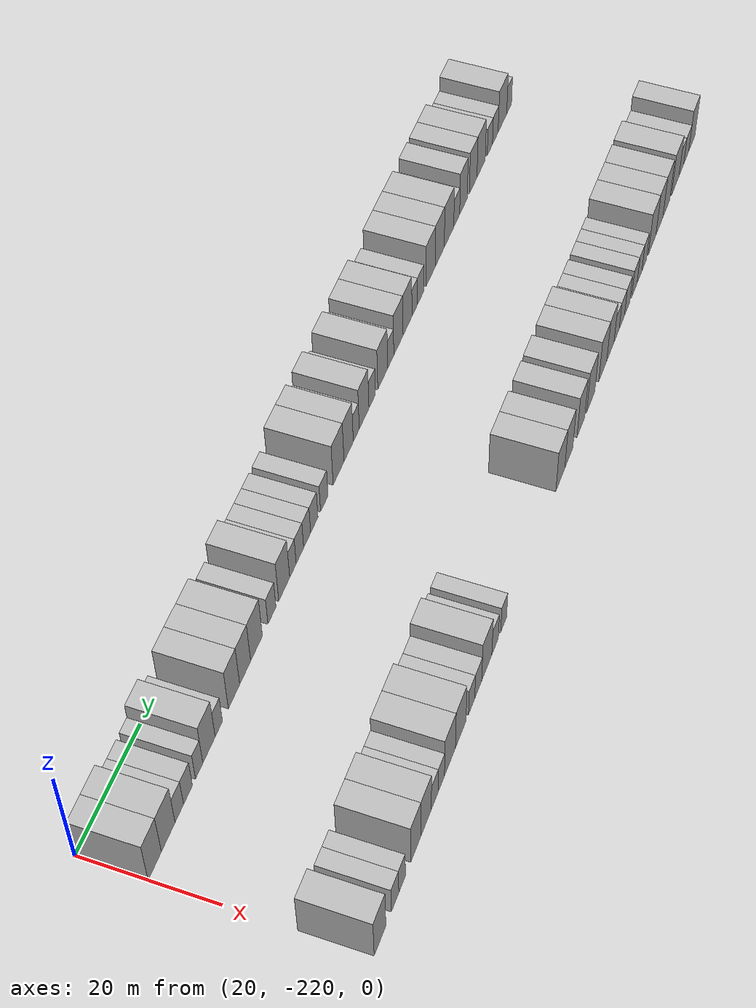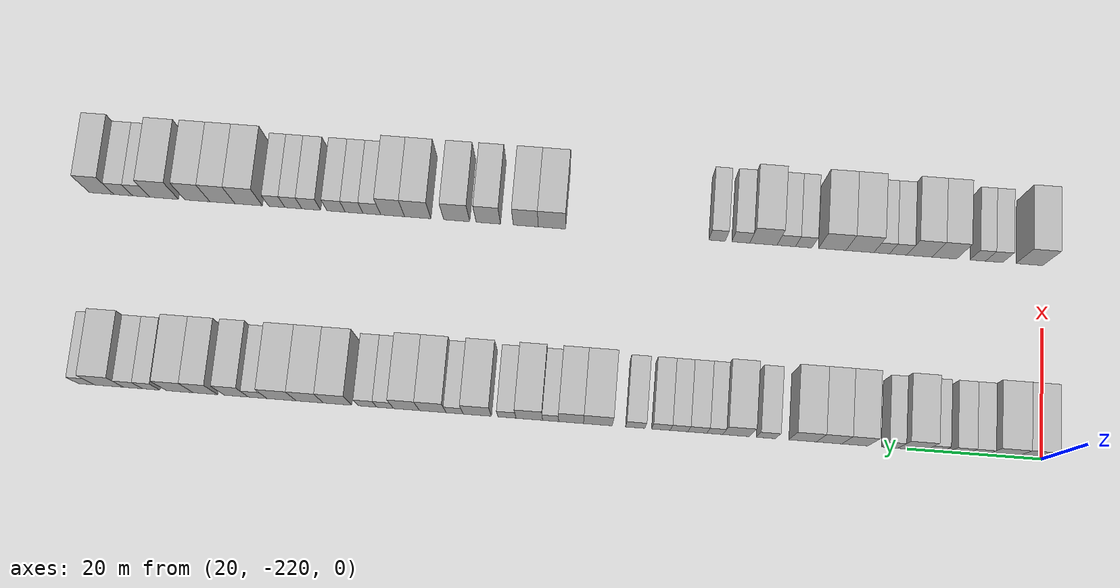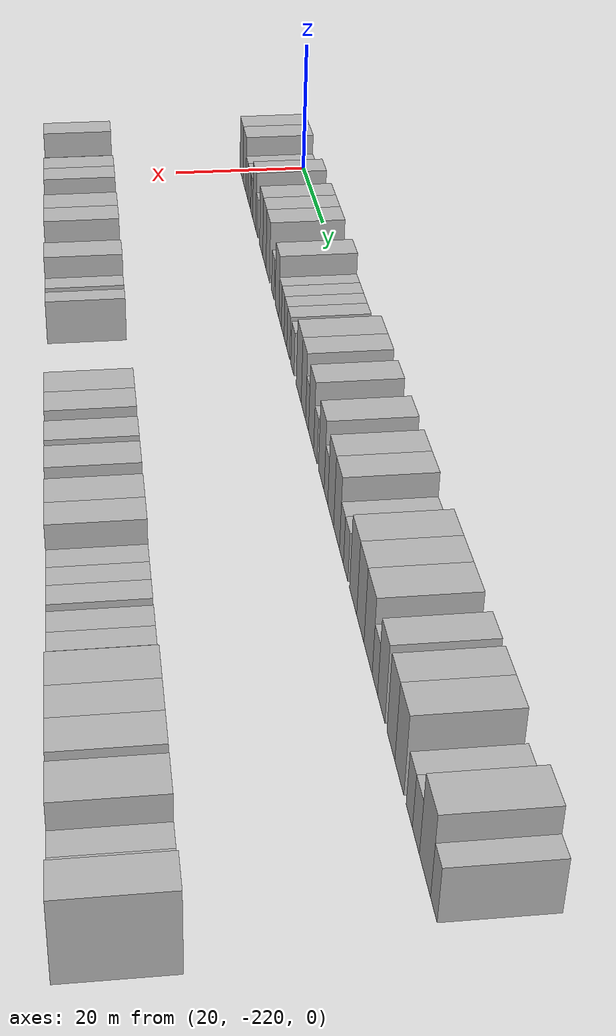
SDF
<sdf version="1.6">
 <world name="default">
  <model name="building_1">
   <static>1</static>
   <pose>25.0000 -217.9361 0 0.000000 0.000000 0.000000</pose>
   <link name="link">
    <pose>0 0 4.50 0 0 0</pose>
    <collision name="collision"><geometry><box><size>10.0000 4.1279 9.0000</size></box></geometry></collision>
    <visual name="visual">
     <cast_shadows>0</cast_shadows>
     <geometry><box><size>10.0000 4.1279 9.0000</size></box></geometry>
     <material>
      <script>
       <uri>model://HANNAS_wall/materials/scripts</uri>
       <uri>model://HANNAS_wall/materials/textures</uri>
       <name>vrc/HANNAS_wall</name>
      </script>
     </material>
    </visual>
   </link>
  </model>
  <model name="building_2">
   <static>1</static>
   <pose>25.0000 -213.7134 0 0.000000 0.000000 0.000000</pose>
   <link name="link">
    <pose>0 0 4.50 0 0 0</pose>
    <collision name="collision"><geometry><box><size>10.0000 4.3174 9.0000</size></box></geometry></collision>
    <visual name="visual">
     <cast_shadows>0</cast_shadows>
     <geometry><box><size>10.0000 4.3174 9.0000</size></box></geometry>
     <material>
      <script>
       <uri>model://HANNAS_wall/materials/scripts</uri>
       <uri>model://HANNAS_wall/materials/textures</uri>
       <name>vrc/HANNAS_wall</name>
      </script>
     </material>
    </visual>
   </link>
  </model>
  <model name="building_3">
   <static>1</static>
   <pose>25.0000 -210.1989 0 0.000000 0.000000 0.000000</pose>
   <link name="link">
    <pose>0 0 3.00 0 0 0</pose>
    <collision name="collision"><geometry><box><size>10.0000 2.7117 6.0000</size></box></geometry></collision>
    <visual name="visual">
     <cast_shadows>0</cast_shadows>
     <geometry><box><size>10.0000 2.7117 6.0000</size></box></geometry>
     <material>
      <script>
       <uri>model://HANNAS_wall/materials/scripts</uri>
       <uri>model://HANNAS_wall/materials/textures</uri>
       <name>vrc/HANNAS_wall</name>
      </script>
     </material>
    </visual>
   </link>
  </model>
  <model name="building_4">
   <static>1</static>
   <pose>25.0000 -207.4145 0 0.000000 0.000000 0.000000</pose>
   <link name="link">
    <pose>0 0 3.00 0 0 0</pose>
    <collision name="collision"><geometry><box><size>10.0000 2.8571 6.0000</size></box></geometry></collision>
    <visual name="visual">
     <cast_shadows>0</cast_shadows>
     <geometry><box><size>10.0000 2.8571 6.0000</size></box></geometry>
     <material>
      <script>
       <uri>model://HANNAS_wall/materials/scripts</uri>
       <uri>model://HANNAS_wall/materials/textures</uri>
       <name>vrc/HANNAS_wall</name>
      </script>
     </material>
    </visual>
   </link>
  </model>
  <model name="building_5">
   <static>1</static>
   <pose>25.0000 -203.7830 0 0.000000 0.000000 0.000000</pose>
   <link name="link">
    <pose>0 0 3.00 0 0 0</pose>
    <collision name="collision"><geometry><box><size>10.0000 2.4057 6.0000</size></box></geometry></collision>
    <visual name="visual">
     <cast_shadows>0</cast_shadows>
     <geometry><box><size>10.0000 2.4057 6.0000</size></box></geometry>
     <material>
      <script>
       <uri>model://HANNAS_wall/materials/scripts</uri>
       <uri>model://HANNAS_wall/materials/textures</uri>
       <name>vrc/HANNAS_wall</name>
      </script>
     </material>
    </visual>
   </link>
  </model>
  <model name="building_6">
   <static>1</static>
   <pose>25.0000 -200.5248 0 0.000000 0.000000 0.000000</pose>
   <link name="link">
    <pose>0 0 4.50 0 0 0</pose>
    <collision name="collision"><geometry><box><size>10.0000 4.1108 9.0000</size></box></geometry></collision>
    <visual name="visual">
     <cast_shadows>0</cast_shadows>
     <geometry><box><size>10.0000 4.1108 9.0000</size></box></geometry>
     <material>
      <script>
       <uri>model://HANNAS_wall/materials/scripts</uri>
       <uri>model://HANNAS_wall/materials/textures</uri>
       <name>vrc/HANNAS_wall</name>
      </script>
     </material>
    </visual>
   </link>
  </model>
  <model name="building_7">
   <static>1</static>
   <pose>25.0000 -197.2412 0 0.000000 0.000000 0.000000</pose>
   <link name="link">
    <pose>0 0 3.00 0 0 0</pose>
    <collision name="collision"><geometry><box><size>10.0000 2.4563 6.0000</size></box></geometry></collision>
    <visual name="visual">
     <cast_shadows>0</cast_shadows>
     <geometry><box><size>10.0000 2.4563 6.0000</size></box></geometry>
     <material>
      <script>
       <uri>model://HANNAS_wall/materials/scripts</uri>
       <uri>model://HANNAS_wall/materials/textures</uri>
       <name>vrc/HANNAS_wall</name>
      </script>
     </material>
    </visual>
   </link>
  </model>
  <model name="building_8">
   <static>1</static>
   <pose>25.0000 -192.0605 0 0.000000 0.000000 0.000000</pose>
   <link name="link">
    <pose>0 0 4.50 0 0 0</pose>
    <collision name="collision"><geometry><box><size>10.0000 3.9051 9.0000</size></box></geometry></collision>
    <visual name="visual">
     <cast_shadows>0</cast_shadows>
     <geometry><box><size>10.0000 3.9051 9.0000</size></box></geometry>
     <material>
      <script>
       <uri>model://HANNAS_wall/materials/scripts</uri>
       <uri>model://HANNAS_wall/materials/textures</uri>
       <name>vrc/HANNAS_wall</name>
      </script>
     </material>
    </visual>
   </link>
  </model>
  <model name="building_9">
   <static>1</static>
   <pose>25.0000 -188.2016 0 0.000000 0.000000 0.000000</pose>
   <link name="link">
    <pose>0 0 4.50 0 0 0</pose>
    <collision name="collision"><geometry><box><size>10.0000 3.8128 9.0000</size></box></geometry></collision>
    <visual name="visual">
     <cast_shadows>0</cast_shadows>
     <geometry><box><size>10.0000 3.8128 9.0000</size></box></geometry>
     <material>
      <script>
       <uri>model://HANNAS_wall/materials/scripts</uri>
       <uri>model://HANNAS_wall/materials/textures</uri>
       <name>vrc/HANNAS_wall</name>
      </script>
     </material>
    </visual>
   </link>
  </model>
  <model name="building_10">
   <static>1</static>
   <pose>25.0000 -184.2133 0 0.000000 0.000000 0.000000</pose>
   <link name="link">
    <pose>0 0 4.50 0 0 0</pose>
    <collision name="collision"><geometry><box><size>10.0000 4.1638 9.0000</size></box></geometry></collision>
    <visual name="visual">
     <cast_shadows>0</cast_shadows>
     <geometry><box><size>10.0000 4.1638 9.0000</size></box></geometry>
     <material>
      <script>
       <uri>model://HANNAS_wall/materials/scripts</uri>
       <uri>model://HANNAS_wall/materials/textures</uri>
       <name>vrc/HANNAS_wall</name>
      </script>
     </material>
    </visual>
   </link>
  </model>
  <model name="building_11">
   <static>1</static>
   <pose>25.0000 -178.6746 0 0.000000 0.000000 0.000000</pose>
   <link name="link">
    <pose>0 0 3.00 0 0 0</pose>
    <collision name="collision"><geometry><box><size>10.0000 2.9137 6.0000</size></box></geometry></collision>
    <visual name="visual">
     <cast_shadows>0</cast_shadows>
     <geometry><box><size>10.0000 2.9137 6.0000</size></box></geometry>
     <material>
      <script>
       <uri>model://HANNAS_wall/materials/scripts</uri>
       <uri>model://HANNAS_wall/materials/textures</uri>
       <name>vrc/HANNAS_wall</name>
      </script>
     </material>
    </visual>
   </link>
  </model>
  <model name="building_12">
   <static>1</static>
   <pose>25.0000 -174.1912 0 0.000000 0.000000 0.000000</pose>
   <link name="link">
    <pose>0 0 4.50 0 0 0</pose>
    <collision name="collision"><geometry><box><size>10.0000 4.0531 9.0000</size></box></geometry></collision>
    <visual name="visual">
     <cast_shadows>0</cast_shadows>
     <geometry><box><size>10.0000 4.0531 9.0000</size></box></geometry>
     <material>
      <script>
       <uri>model://HANNAS_wall/materials/scripts</uri>
       <uri>model://HANNAS_wall/materials/textures</uri>
       <name>vrc/HANNAS_wall</name>
      </script>
     </material>
    </visual>
   </link>
  </model>
  <model name="building_13">
   <static>1</static>
   <pose>25.0000 -170.9646 0 0.000000 0.000000 0.000000</pose>
   <link name="link">
    <pose>0 0 3.00 0 0 0</pose>
    <collision name="collision"><geometry><box><size>10.0000 2.4002 6.0000</size></box></geometry></collision>
    <visual name="visual">
     <cast_shadows>0</cast_shadows>
     <geometry><box><size>10.0000 2.4002 6.0000</size></box></geometry>
     <material>
      <script>
       <uri>model://HANNAS_wall/materials/scripts</uri>
       <uri>model://HANNAS_wall/materials/textures</uri>
       <name>vrc/HANNAS_wall</name>
      </script>
     </material>
    </visual>
   </link>
  </model>
  <model name="building_14">
   <static>1</static>
   <pose>25.0000 -168.3456 0 0.000000 0.000000 0.000000</pose>
   <link name="link">
    <pose>0 0 3.00 0 0 0</pose>
    <collision name="collision"><geometry><box><size>10.0000 2.8377 6.0000</size></box></geometry></collision>
    <visual name="visual">
     <cast_shadows>0</cast_shadows>
     <geometry><box><size>10.0000 2.8377 6.0000</size></box></geometry>
     <material>
      <script>
       <uri>model://HANNAS_wall/materials/scripts</uri>
       <uri>model://HANNAS_wall/materials/textures</uri>
       <name>vrc/HANNAS_wall</name>
      </script>
     </material>
    </visual>
   </link>
  </model>
  <model name="building_15">
   <static>1</static>
   <pose>25.0000 -165.5896 0 0.000000 0.000000 0.000000</pose>
   <link name="link">
    <pose>0 0 3.00 0 0 0</pose>
    <collision name="collision"><geometry><box><size>10.0000 2.6744 6.0000</size></box></geometry></collision>
    <visual name="visual">
     <cast_shadows>0</cast_shadows>
     <geometry><box><size>10.0000 2.6744 6.0000</size></box></geometry>
     <material>
      <script>
       <uri>model://HANNAS_wall/materials/scripts</uri>
       <uri>model://HANNAS_wall/materials/textures</uri>
       <name>vrc/HANNAS_wall</name>
      </script>
     </material>
    </visual>
   </link>
  </model>
  <model name="building_16">
   <static>1</static>
   <pose>25.0000 -162.8514 0 0.000000 0.000000 0.000000</pose>
   <link name="link">
    <pose>0 0 3.00 0 0 0</pose>
    <collision name="collision"><geometry><box><size>10.0000 2.8020 6.0000</size></box></geometry></collision>
    <visual name="visual">
     <cast_shadows>0</cast_shadows>
     <geometry><box><size>10.0000 2.8020 6.0000</size></box></geometry>
     <material>
      <script>
       <uri>model://HANNAS_wall/materials/scripts</uri>
       <uri>model://HANNAS_wall/materials/textures</uri>
       <name>vrc/HANNAS_wall</name>
      </script>
     </material>
    </visual>
   </link>
  </model>
  <model name="building_17">
   <static>1</static>
   <pose>25.0000 -158.9862 0 0.000000 0.000000 0.000000</pose>
   <link name="link">
    <pose>0 0 3.00 0 0 0</pose>
    <collision name="collision"><geometry><box><size>10.0000 2.9284 6.0000</size></box></geometry></collision>
    <visual name="visual">
     <cast_shadows>0</cast_shadows>
     <geometry><box><size>10.0000 2.9284 6.0000</size></box></geometry>
     <material>
      <script>
       <uri>model://HANNAS_wall/materials/scripts</uri>
       <uri>model://HANNAS_wall/materials/textures</uri>
       <name>vrc/HANNAS_wall</name>
      </script>
     </material>
    </visual>
   </link>
  </model>
  <model name="building_18">
   <static>1</static>
   <pose>25.0000 -153.3466 0 0.000000 0.000000 0.000000</pose>
   <link name="link">
    <pose>0 0 4.50 0 0 0</pose>
    <collision name="collision"><geometry><box><size>10.0000 4.3508 9.0000</size></box></geometry></collision>
    <visual name="visual">
     <cast_shadows>0</cast_shadows>
     <geometry><box><size>10.0000 4.3508 9.0000</size></box></geometry>
     <material>
      <script>
       <uri>model://HANNAS_wall/materials/scripts</uri>
       <uri>model://HANNAS_wall/materials/textures</uri>
       <name>vrc/HANNAS_wall</name>
      </script>
     </material>
    </visual>
   </link>
  </model>
  <model name="building_19">
   <static>1</static>
   <pose>25.0000 -149.2983 0 0.000000 0.000000 0.000000</pose>
   <link name="link">
    <pose>0 0 4.50 0 0 0</pose>
    <collision name="collision"><geometry><box><size>10.0000 3.7458 9.0000</size></box></geometry></collision>
    <visual name="visual">
     <cast_shadows>0</cast_shadows>
     <geometry><box><size>10.0000 3.7458 9.0000</size></box></geometry>
     <material>
      <script>
       <uri>model://HANNAS_wall/materials/scripts</uri>
       <uri>model://HANNAS_wall/materials/textures</uri>
       <name>vrc/HANNAS_wall</name>
      </script>
     </material>
    </visual>
   </link>
  </model>
  <model name="building_20">
   <static>1</static>
   <pose>25.0000 -146.2084 0 0.000000 0.000000 0.000000</pose>
   <link name="link">
    <pose>0 0 3.00 0 0 0</pose>
    <collision name="collision"><geometry><box><size>10.0000 2.4340 6.0000</size></box></geometry></collision>
    <visual name="visual">
     <cast_shadows>0</cast_shadows>
     <geometry><box><size>10.0000 2.4340 6.0000</size></box></geometry>
     <material>
      <script>
       <uri>model://HANNAS_wall/materials/scripts</uri>
       <uri>model://HANNAS_wall/materials/textures</uri>
       <name>vrc/HANNAS_wall</name>
      </script>
     </material>
    </visual>
   </link>
  </model>
  <model name="building_21">
   <static>1</static>
   <pose>25.0000 -142.9837 0 0.000000 0.000000 0.000000</pose>
   <link name="link">
    <pose>0 0 4.50 0 0 0</pose>
    <collision name="collision"><geometry><box><size>10.0000 4.0155 9.0000</size></box></geometry></collision>
    <visual name="visual">
     <cast_shadows>0</cast_shadows>
     <geometry><box><size>10.0000 4.0155 9.0000</size></box></geometry>
     <material>
      <script>
       <uri>model://HANNAS_wall/materials/scripts</uri>
       <uri>model://HANNAS_wall/materials/textures</uri>
       <name>vrc/HANNAS_wall</name>
      </script>
     </material>
    </visual>
   </link>
  </model>
  <model name="building_22">
   <static>1</static>
   <pose>25.0000 -139.6213 0 0.000000 0.000000 0.000000</pose>
   <link name="link">
    <pose>0 0 3.00 0 0 0</pose>
    <collision name="collision"><geometry><box><size>10.0000 2.7093 6.0000</size></box></geometry></collision>
    <visual name="visual">
     <cast_shadows>0</cast_shadows>
     <geometry><box><size>10.0000 2.7093 6.0000</size></box></geometry>
     <material>
      <script>
       <uri>model://HANNAS_wall/materials/scripts</uri>
       <uri>model://HANNAS_wall/materials/textures</uri>
       <name>vrc/HANNAS_wall</name>
      </script>
     </material>
    </visual>
   </link>
  </model>
  <model name="building_23">
   <static>1</static>
   <pose>25.0000 -135.1451 0 0.000000 0.000000 0.000000</pose>
   <link name="link">
    <pose>0 0 4.50 0 0 0</pose>
    <collision name="collision"><geometry><box><size>10.0000 4.2429 9.0000</size></box></geometry></collision>
    <visual name="visual">
     <cast_shadows>0</cast_shadows>
     <geometry><box><size>10.0000 4.2429 9.0000</size></box></geometry>
     <material>
      <script>
       <uri>model://HANNAS_wall/materials/scripts</uri>
       <uri>model://HANNAS_wall/materials/textures</uri>
       <name>vrc/HANNAS_wall</name>
      </script>
     </material>
    </visual>
   </link>
  </model>
  <model name="building_24">
   <static>1</static>
   <pose>25.0000 -131.7192 0 0.000000 0.000000 0.000000</pose>
   <link name="link">
    <pose>0 0 3.00 0 0 0</pose>
    <collision name="collision"><geometry><box><size>10.0000 2.6089 6.0000</size></box></geometry></collision>
    <visual name="visual">
     <cast_shadows>0</cast_shadows>
     <geometry><box><size>10.0000 2.6089 6.0000</size></box></geometry>
     <material>
      <script>
       <uri>model://HANNAS_wall/materials/scripts</uri>
       <uri>model://HANNAS_wall/materials/textures</uri>
       <name>vrc/HANNAS_wall</name>
      </script>
     </material>
    </visual>
   </link>
  </model>
  <model name="building_25">
   <static>1</static>
   <pose>25.0000 -128.3897 0 0.000000 0.000000 0.000000</pose>
   <link name="link">
    <pose>0 0 4.50 0 0 0</pose>
    <collision name="collision"><geometry><box><size>10.0000 4.0501 9.0000</size></box></geometry></collision>
    <visual name="visual">
     <cast_shadows>0</cast_shadows>
     <geometry><box><size>10.0000 4.0501 9.0000</size></box></geometry>
     <material>
      <script>
       <uri>model://HANNAS_wall/materials/scripts</uri>
       <uri>model://HANNAS_wall/materials/textures</uri>
       <name>vrc/HANNAS_wall</name>
      </script>
     </material>
    </visual>
   </link>
  </model>
  <model name="building_26">
   <static>1</static>
   <pose>25.0000 -124.4075 0 0.000000 0.000000 0.000000</pose>
   <link name="link">
    <pose>0 0 4.50 0 0 0</pose>
    <collision name="collision"><geometry><box><size>10.0000 3.9143 9.0000</size></box></geometry></collision>
    <visual name="visual">
     <cast_shadows>0</cast_shadows>
     <geometry><box><size>10.0000 3.9143 9.0000</size></box></geometry>
     <material>
      <script>
       <uri>model://HANNAS_wall/materials/scripts</uri>
       <uri>model://HANNAS_wall/materials/textures</uri>
       <name>vrc/HANNAS_wall</name>
      </script>
     </material>
    </visual>
   </link>
  </model>
  <model name="building_27">
   <static>1</static>
   <pose>25.0000 -121.1815 0 0.000000 0.000000 0.000000</pose>
   <link name="link">
    <pose>0 0 3.00 0 0 0</pose>
    <collision name="collision"><geometry><box><size>10.0000 2.5376 6.0000</size></box></geometry></collision>
    <visual name="visual">
     <cast_shadows>0</cast_shadows>
     <geometry><box><size>10.0000 2.5376 6.0000</size></box></geometry>
     <material>
      <script>
       <uri>model://HANNAS_wall/materials/scripts</uri>
       <uri>model://HANNAS_wall/materials/textures</uri>
       <name>vrc/HANNAS_wall</name>
      </script>
     </material>
    </visual>
   </link>
  </model>
  <model name="building_28">
   <static>1</static>
   <pose>25.0000 -118.4979 0 0.000000 0.000000 0.000000</pose>
   <link name="link">
    <pose>0 0 3.00 0 0 0</pose>
    <collision name="collision"><geometry><box><size>10.0000 2.8295 6.0000</size></box></geometry></collision>
    <visual name="visual">
     <cast_shadows>0</cast_shadows>
     <geometry><box><size>10.0000 2.8295 6.0000</size></box></geometry>
     <material>
      <script>
       <uri>model://HANNAS_wall/materials/scripts</uri>
       <uri>model://HANNAS_wall/materials/textures</uri>
       <name>vrc/HANNAS_wall</name>
      </script>
     </material>
    </visual>
   </link>
  </model>
  <model name="building_29">
   <static>1</static>
   <pose>25.0000 -113.9356 0 0.000000 0.000000 0.000000</pose>
   <link name="link">
    <pose>0 0 4.50 0 0 0</pose>
    <collision name="collision"><geometry><box><size>10.0000 4.2951 9.0000</size></box></geometry></collision>
    <visual name="visual">
     <cast_shadows>0</cast_shadows>
     <geometry><box><size>10.0000 4.2951 9.0000</size></box></geometry>
     <material>
      <script>
       <uri>model://HANNAS_wall/materials/scripts</uri>
       <uri>model://HANNAS_wall/materials/textures</uri>
       <name>vrc/HANNAS_wall</name>
      </script>
     </material>
    </visual>
   </link>
  </model>
  <model name="building_30">
   <static>1</static>
   <pose>25.0000 -109.7201 0 0.000000 0.000000 0.000000</pose>
   <link name="link">
    <pose>0 0 4.50 0 0 0</pose>
    <collision name="collision"><geometry><box><size>10.0000 4.1360 9.0000</size></box></geometry></collision>
    <visual name="visual">
     <cast_shadows>0</cast_shadows>
     <geometry><box><size>10.0000 4.1360 9.0000</size></box></geometry>
     <material>
      <script>
       <uri>model://HANNAS_wall/materials/scripts</uri>
       <uri>model://HANNAS_wall/materials/textures</uri>
       <name>vrc/HANNAS_wall</name>
      </script>
     </material>
    </visual>
   </link>
  </model>
  <model name="building_31">
   <static>1</static>
   <pose>25.0000 -105.4239 0 0.000000 0.000000 0.000000</pose>
   <link name="link">
    <pose>0 0 4.50 0 0 0</pose>
    <collision name="collision"><geometry><box><size>10.0000 4.4564 9.0000</size></box></geometry></collision>
    <visual name="visual">
     <cast_shadows>0</cast_shadows>
     <geometry><box><size>10.0000 4.4564 9.0000</size></box></geometry>
     <material>
      <script>
       <uri>model://HANNAS_wall/materials/scripts</uri>
       <uri>model://HANNAS_wall/materials/textures</uri>
       <name>vrc/HANNAS_wall</name>
      </script>
     </material>
    </visual>
   </link>
  </model>
  <model name="building_32">
   <static>1</static>
   <pose>25.0000 -101.7912 0 0.000000 0.000000 0.000000</pose>
   <link name="link">
    <pose>0 0 3.00 0 0 0</pose>
    <collision name="collision"><geometry><box><size>10.0000 2.8089 6.0000</size></box></geometry></collision>
    <visual name="visual">
     <cast_shadows>0</cast_shadows>
     <geometry><box><size>10.0000 2.8089 6.0000</size></box></geometry>
     <material>
      <script>
       <uri>model://HANNAS_wall/materials/scripts</uri>
       <uri>model://HANNAS_wall/materials/textures</uri>
       <name>vrc/HANNAS_wall</name>
      </script>
     </material>
    </visual>
   </link>
  </model>
  <model name="building_33">
   <static>1</static>
   <pose>25.0000 -98.5411 0 0.000000 0.000000 0.000000</pose>
   <link name="link">
    <pose>0 0 4.50 0 0 0</pose>
    <collision name="collision"><geometry><box><size>10.0000 3.6913 9.0000</size></box></geometry></collision>
    <visual name="visual">
     <cast_shadows>0</cast_shadows>
     <geometry><box><size>10.0000 3.6913 9.0000</size></box></geometry>
     <material>
      <script>
       <uri>model://HANNAS_wall/materials/scripts</uri>
       <uri>model://HANNAS_wall/materials/textures</uri>
       <name>vrc/HANNAS_wall</name>
      </script>
     </material>
    </visual>
   </link>
  </model>
  <model name="building_34">
   <static>1</static>
   <pose>25.0000 -93.8337 0 0.000000 0.000000 0.000000</pose>
   <link name="link">
    <pose>0 0 4.50 0 0 0</pose>
    <collision name="collision"><geometry><box><size>10.0000 3.7235 9.0000</size></box></geometry></collision>
    <visual name="visual">
     <cast_shadows>0</cast_shadows>
     <geometry><box><size>10.0000 3.7235 9.0000</size></box></geometry>
     <material>
      <script>
       <uri>model://HANNAS_wall/materials/scripts</uri>
       <uri>model://HANNAS_wall/materials/textures</uri>
       <name>vrc/HANNAS_wall</name>
      </script>
     </material>
    </visual>
   </link>
  </model>
  <model name="building_35">
   <static>1</static>
   <pose>25.0000 -89.9262 0 0.000000 0.000000 0.000000</pose>
   <link name="link">
    <pose>0 0 4.50 0 0 0</pose>
    <collision name="collision"><geometry><box><size>10.0000 4.0915 9.0000</size></box></geometry></collision>
    <visual name="visual">
     <cast_shadows>0</cast_shadows>
     <geometry><box><size>10.0000 4.0915 9.0000</size></box></geometry>
     <material>
      <script>
       <uri>model://HANNAS_wall/materials/scripts</uri>
       <uri>model://HANNAS_wall/materials/textures</uri>
       <name>vrc/HANNAS_wall</name>
      </script>
     </material>
    </visual>
   </link>
  </model>
  <model name="building_36">
   <static>1</static>
   <pose>25.0000 -85.5533 0 0.000000 0.000000 0.000000</pose>
   <link name="link">
    <pose>0 0 3.00 0 0 0</pose>
    <collision name="collision"><geometry><box><size>10.0000 2.6542 6.0000</size></box></geometry></collision>
    <visual name="visual">
     <cast_shadows>0</cast_shadows>
     <geometry><box><size>10.0000 2.6542 6.0000</size></box></geometry>
     <material>
      <script>
       <uri>model://HANNAS_wall/materials/scripts</uri>
       <uri>model://HANNAS_wall/materials/textures</uri>
       <name>vrc/HANNAS_wall</name>
      </script>
     </material>
    </visual>
   </link>
  </model>
  <model name="building_37">
   <static>1</static>
   <pose>25.0000 -82.7916 0 0.000000 0.000000 0.000000</pose>
   <link name="link">
    <pose>0 0 3.00 0 0 0</pose>
    <collision name="collision"><geometry><box><size>10.0000 2.8693 6.0000</size></box></geometry></collision>
    <visual name="visual">
     <cast_shadows>0</cast_shadows>
     <geometry><box><size>10.0000 2.8693 6.0000</size></box></geometry>
     <material>
      <script>
       <uri>model://HANNAS_wall/materials/scripts</uri>
       <uri>model://HANNAS_wall/materials/textures</uri>
       <name>vrc/HANNAS_wall</name>
      </script>
     </material>
    </visual>
   </link>
  </model>
  <model name="building_38">
   <static>1</static>
   <pose>25.0000 -79.1529 0 0.000000 0.000000 0.000000</pose>
   <link name="link">
    <pose>0 0 4.50 0 0 0</pose>
    <collision name="collision"><geometry><box><size>10.0000 4.4080 9.0000</size></box></geometry></collision>
    <visual name="visual">
     <cast_shadows>0</cast_shadows>
     <geometry><box><size>10.0000 4.4080 9.0000</size></box></geometry>
     <material>
      <script>
       <uri>model://HANNAS_wall/materials/scripts</uri>
       <uri>model://HANNAS_wall/materials/textures</uri>
       <name>vrc/HANNAS_wall</name>
      </script>
     </material>
    </visual>
   </link>
  </model>
  <model name="building_39">
   <static>1</static>
   <pose>25.0000 -75.7002 0 0.000000 0.000000 0.000000</pose>
   <link name="link">
    <pose>0 0 3.00 0 0 0</pose>
    <collision name="collision"><geometry><box><size>10.0000 2.4975 6.0000</size></box></geometry></collision>
    <visual name="visual">
     <cast_shadows>0</cast_shadows>
     <geometry><box><size>10.0000 2.4975 6.0000</size></box></geometry>
     <material>
      <script>
       <uri>model://HANNAS_wall/materials/scripts</uri>
       <uri>model://HANNAS_wall/materials/textures</uri>
       <name>vrc/HANNAS_wall</name>
      </script>
     </material>
    </visual>
   </link>
  </model>
  <model name="building_107">
   <static>1</static>
   <pose>55.0000 -217.9245 0 0.000000 0.000000 0.000000</pose>
   <link name="link">
    <pose>0 0 4.50 0 0 0</pose>
    <collision name="collision"><geometry><box><size>10.0000 4.1509 9.0000</size></box></geometry></collision>
    <visual name="visual">
     <cast_shadows>0</cast_shadows>
     <geometry><box><size>10.0000 4.1509 9.0000</size></box></geometry>
     <material>
      <script>
       <uri>model://HANNAS_wall/materials/scripts</uri>
       <uri>model://HANNAS_wall/materials/textures</uri>
       <name>vrc/HANNAS_wall</name>
      </script>
     </material>
    </visual>
   </link>
  </model>
  <model name="building_108">
   <static>1</static>
   <pose>55.0000 -212.5198 0 0.000000 0.000000 0.000000</pose>
   <link name="link">
    <pose>0 0 3.00 0 0 0</pose>
    <collision name="collision"><geometry><box><size>10.0000 2.6585 6.0000</size></box></geometry></collision>
    <visual name="visual">
     <cast_shadows>0</cast_shadows>
     <geometry><box><size>10.0000 2.6585 6.0000</size></box></geometry>
     <material>
      <script>
       <uri>model://HANNAS_wall/materials/scripts</uri>
       <uri>model://HANNAS_wall/materials/textures</uri>
       <name>vrc/HANNAS_wall</name>
      </script>
     </material>
    </visual>
   </link>
  </model>
  <model name="building_109">
   <static>1</static>
   <pose>55.0000 -209.9750 0 0.000000 0.000000 0.000000</pose>
   <link name="link">
    <pose>0 0 3.00 0 0 0</pose>
    <collision name="collision"><geometry><box><size>10.0000 2.4311 6.0000</size></box></geometry></collision>
    <visual name="visual">
     <cast_shadows>0</cast_shadows>
     <geometry><box><size>10.0000 2.4311 6.0000</size></box></geometry>
     <material>
      <script>
       <uri>model://HANNAS_wall/materials/scripts</uri>
       <uri>model://HANNAS_wall/materials/textures</uri>
       <name>vrc/HANNAS_wall</name>
      </script>
     </material>
    </visual>
   </link>
  </model>
  <model name="building_110">
   <static>1</static>
   <pose>55.0000 -204.8515 0 0.000000 0.000000 0.000000</pose>
   <link name="link">
    <pose>0 0 4.50 0 0 0</pose>
    <collision name="collision"><geometry><box><size>10.0000 3.8159 9.0000</size></box></geometry></collision>
    <visual name="visual">
     <cast_shadows>0</cast_shadows>
     <geometry><box><size>10.0000 3.8159 9.0000</size></box></geometry>
     <material>
      <script>
       <uri>model://HANNAS_wall/materials/scripts</uri>
       <uri>model://HANNAS_wall/materials/textures</uri>
       <name>vrc/HANNAS_wall</name>
      </script>
     </material>
    </visual>
   </link>
  </model>
  <model name="building_111">
   <static>1</static>
   <pose>55.0000 -200.9838 0 0.000000 0.000000 0.000000</pose>
   <link name="link">
    <pose>0 0 4.50 0 0 0</pose>
    <collision name="collision"><geometry><box><size>10.0000 3.9195 9.0000</size></box></geometry></collision>
    <visual name="visual">
     <cast_shadows>0</cast_shadows>
     <geometry><box><size>10.0000 3.9195 9.0000</size></box></geometry>
     <material>
      <script>
       <uri>model://HANNAS_wall/materials/scripts</uri>
       <uri>model://HANNAS_wall/materials/textures</uri>
       <name>vrc/HANNAS_wall</name>
      </script>
     </material>
    </visual>
   </link>
  </model>
  <model name="building_112">
   <static>1</static>
   <pose>55.0000 -197.6910 0 0.000000 0.000000 0.000000</pose>
   <link name="link">
    <pose>0 0 3.00 0 0 0</pose>
    <collision name="collision"><geometry><box><size>10.0000 2.6661 6.0000</size></box></geometry></collision>
    <visual name="visual">
     <cast_shadows>0</cast_shadows>
     <geometry><box><size>10.0000 2.6661 6.0000</size></box></geometry>
     <material>
      <script>
       <uri>model://HANNAS_wall/materials/scripts</uri>
       <uri>model://HANNAS_wall/materials/textures</uri>
       <name>vrc/HANNAS_wall</name>
      </script>
     </material>
    </visual>
   </link>
  </model>
  <model name="building_113">
   <static>1</static>
   <pose>55.0000 -195.1484 0 0.000000 0.000000 0.000000</pose>
   <link name="link">
    <pose>0 0 3.00 0 0 0</pose>
    <collision name="collision"><geometry><box><size>10.0000 2.4190 6.0000</size></box></geometry></collision>
    <visual name="visual">
     <cast_shadows>0</cast_shadows>
     <geometry><box><size>10.0000 2.4190 6.0000</size></box></geometry>
     <material>
      <script>
       <uri>model://HANNAS_wall/materials/scripts</uri>
       <uri>model://HANNAS_wall/materials/textures</uri>
       <name>vrc/HANNAS_wall</name>
      </script>
     </material>
    </visual>
   </link>
  </model>
  <model name="building_114">
   <static>1</static>
   <pose>55.0000 -191.7737 0 0.000000 0.000000 0.000000</pose>
   <link name="link">
    <pose>0 0 4.50 0 0 0</pose>
    <collision name="collision"><geometry><box><size>10.0000 4.3305 9.0000</size></box></geometry></collision>
    <visual name="visual">
     <cast_shadows>0</cast_shadows>
     <geometry><box><size>10.0000 4.3305 9.0000</size></box></geometry>
     <material>
      <script>
       <uri>model://HANNAS_wall/materials/scripts</uri>
       <uri>model://HANNAS_wall/materials/textures</uri>
       <name>vrc/HANNAS_wall</name>
      </script>
     </material>
    </visual>
   </link>
  </model>
  <model name="building_115">
   <static>1</static>
   <pose>55.0000 -187.4859 0 0.000000 0.000000 0.000000</pose>
   <link name="link">
    <pose>0 0 4.50 0 0 0</pose>
    <collision name="collision"><geometry><box><size>10.0000 4.2450 9.0000</size></box></geometry></collision>
    <visual name="visual">
     <cast_shadows>0</cast_shadows>
     <geometry><box><size>10.0000 4.2450 9.0000</size></box></geometry>
     <material>
      <script>
       <uri>model://HANNAS_wall/materials/scripts</uri>
       <uri>model://HANNAS_wall/materials/textures</uri>
       <name>vrc/HANNAS_wall</name>
      </script>
     </material>
    </visual>
   </link>
  </model>
  <model name="building_116">
   <static>1</static>
   <pose>55.0000 -183.0815 0 0.000000 0.000000 0.000000</pose>
   <link name="link">
    <pose>0 0 3.00 0 0 0</pose>
    <collision name="collision"><geometry><box><size>10.0000 2.5638 6.0000</size></box></geometry></collision>
    <visual name="visual">
     <cast_shadows>0</cast_shadows>
     <geometry><box><size>10.0000 2.5638 6.0000</size></box></geometry>
     <material>
      <script>
       <uri>model://HANNAS_wall/materials/scripts</uri>
       <uri>model://HANNAS_wall/materials/textures</uri>
       <name>vrc/HANNAS_wall</name>
      </script>
     </material>
    </visual>
   </link>
  </model>
  <model name="building_117">
   <static>1</static>
   <pose>55.0000 -180.3723 0 0.000000 0.000000 0.000000</pose>
   <link name="link">
    <pose>0 0 3.00 0 0 0</pose>
    <collision name="collision"><geometry><box><size>10.0000 2.8548 6.0000</size></box></geometry></collision>
    <visual name="visual">
     <cast_shadows>0</cast_shadows>
     <geometry><box><size>10.0000 2.8548 6.0000</size></box></geometry>
     <material>
      <script>
       <uri>model://HANNAS_wall/materials/scripts</uri>
       <uri>model://HANNAS_wall/materials/textures</uri>
       <name>vrc/HANNAS_wall</name>
      </script>
     </material>
    </visual>
   </link>
  </model>
  <model name="building_118">
   <static>1</static>
   <pose>55.0000 -176.8264 0 0.000000 0.000000 0.000000</pose>
   <link name="link">
    <pose>0 0 4.50 0 0 0</pose>
    <collision name="collision"><geometry><box><size>10.0000 4.2369 9.0000</size></box></geometry></collision>
    <visual name="visual">
     <cast_shadows>0</cast_shadows>
     <geometry><box><size>10.0000 4.2369 9.0000</size></box></geometry>
     <material>
      <script>
       <uri>model://HANNAS_wall/materials/scripts</uri>
       <uri>model://HANNAS_wall/materials/textures</uri>
       <name>vrc/HANNAS_wall</name>
      </script>
     </material>
    </visual>
   </link>
  </model>
  <model name="building_119">
   <static>1</static>
   <pose>55.0000 -173.3145 0 0.000000 0.000000 0.000000</pose>
   <link name="link">
    <pose>0 0 3.00 0 0 0</pose>
    <collision name="collision"><geometry><box><size>10.0000 2.7870 6.0000</size></box></geometry></collision>
    <visual name="visual">
     <cast_shadows>0</cast_shadows>
     <geometry><box><size>10.0000 2.7870 6.0000</size></box></geometry>
     <material>
      <script>
       <uri>model://HANNAS_wall/materials/scripts</uri>
       <uri>model://HANNAS_wall/materials/textures</uri>
       <name>vrc/HANNAS_wall</name>
      </script>
     </material>
    </visual>
   </link>
  </model>
  <model name="building_120">
   <static>1</static>
   <pose>55.0000 -169.6356 0 0.000000 0.000000 0.000000</pose>
   <link name="link">
    <pose>0 0 3.00 0 0 0</pose>
    <collision name="collision"><geometry><box><size>10.0000 2.5708 6.0000</size></box></geometry></collision>
    <visual name="visual">
     <cast_shadows>0</cast_shadows>
     <geometry><box><size>10.0000 2.5708 6.0000</size></box></geometry>
     <material>
      <script>
       <uri>model://HANNAS_wall/materials/scripts</uri>
       <uri>model://HANNAS_wall/materials/textures</uri>
       <name>vrc/HANNAS_wall</name>
      </script>
     </material>
    </visual>
   </link>
  </model>
  <model name="building_121">
   <static>1</static>
   <pose>55.0000 -143.9772 0 0.000000 0.000000 0.000000</pose>
   <link name="link">
    <pose>0 0 4.50 0 0 0</pose>
    <collision name="collision"><geometry><box><size>10.0000 4.2487 9.0000</size></box></geometry></collision>
    <visual name="visual">
     <cast_shadows>0</cast_shadows>
     <geometry><box><size>10.0000 4.2487 9.0000</size></box></geometry>
     <material>
      <script>
       <uri>model://HANNAS_wall/materials/scripts</uri>
       <uri>model://HANNAS_wall/materials/textures</uri>
       <name>vrc/HANNAS_wall</name>
      </script>
     </material>
    </visual>
   </link>
  </model>
  <model name="building_122">
   <static>1</static>
   <pose>55.0000 -139.9049 0 0.000000 0.000000 0.000000</pose>
   <link name="link">
    <pose>0 0 4.50 0 0 0</pose>
    <collision name="collision"><geometry><box><size>10.0000 3.8959 9.0000</size></box></geometry></collision>
    <visual name="visual">
     <cast_shadows>0</cast_shadows>
     <geometry><box><size>10.0000 3.8959 9.0000</size></box></geometry>
     <material>
      <script>
       <uri>model://HANNAS_wall/materials/scripts</uri>
       <uri>model://HANNAS_wall/materials/textures</uri>
       <name>vrc/HANNAS_wall</name>
      </script>
     </material>
    </visual>
   </link>
  </model>
  <model name="building_123">
   <static>1</static>
   <pose>55.0000 -134.0569 0 0.000000 0.000000 0.000000</pose>
   <link name="link">
    <pose>0 0 4.50 0 0 0</pose>
    <collision name="collision"><geometry><box><size>10.0000 3.8002 9.0000</size></box></geometry></collision>
    <visual name="visual">
     <cast_shadows>0</cast_shadows>
     <geometry><box><size>10.0000 3.8002 9.0000</size></box></geometry>
     <material>
      <script>
       <uri>model://HANNAS_wall/materials/scripts</uri>
       <uri>model://HANNAS_wall/materials/textures</uri>
       <name>vrc/HANNAS_wall</name>
      </script>
     </material>
    </visual>
   </link>
  </model>
  <model name="building_124">
   <static>1</static>
   <pose>55.0000 -129.1270 0 0.000000 0.000000 0.000000</pose>
   <link name="link">
    <pose>0 0 4.50 0 0 0</pose>
    <collision name="collision"><geometry><box><size>10.0000 4.0596 9.0000</size></box></geometry></collision>
    <visual name="visual">
     <cast_shadows>0</cast_shadows>
     <geometry><box><size>10.0000 4.0596 9.0000</size></box></geometry>
     <material>
      <script>
       <uri>model://HANNAS_wall/materials/scripts</uri>
       <uri>model://HANNAS_wall/materials/textures</uri>
       <name>vrc/HANNAS_wall</name>
      </script>
     </material>
    </visual>
   </link>
  </model>
  <model name="building_125">
   <static>1</static>
   <pose>55.0000 -123.0445 0 0.000000 0.000000 0.000000</pose>
   <link name="link">
    <pose>0 0 4.50 0 0 0</pose>
    <collision name="collision"><geometry><box><size>10.0000 4.1054 9.0000</size></box></geometry></collision>
    <visual name="visual">
     <cast_shadows>0</cast_shadows>
     <geometry><box><size>10.0000 4.1054 9.0000</size></box></geometry>
     <material>
      <script>
       <uri>model://HANNAS_wall/materials/scripts</uri>
       <uri>model://HANNAS_wall/materials/textures</uri>
       <name>vrc/HANNAS_wall</name>
      </script>
     </material>
    </visual>
   </link>
  </model>
  <model name="building_126">
   <static>1</static>
   <pose>55.0000 -119.1241 0 0.000000 0.000000 0.000000</pose>
   <link name="link">
    <pose>0 0 4.50 0 0 0</pose>
    <collision name="collision"><geometry><box><size>10.0000 3.7354 9.0000</size></box></geometry></collision>
    <visual name="visual">
     <cast_shadows>0</cast_shadows>
     <geometry><box><size>10.0000 3.7354 9.0000</size></box></geometry>
     <material>
      <script>
       <uri>model://HANNAS_wall/materials/scripts</uri>
       <uri>model://HANNAS_wall/materials/textures</uri>
       <name>vrc/HANNAS_wall</name>
      </script>
     </material>
    </visual>
   </link>
  </model>
  <model name="building_127">
   <static>1</static>
   <pose>55.0000 -115.8616 0 0.000000 0.000000 0.000000</pose>
   <link name="link">
    <pose>0 0 3.00 0 0 0</pose>
    <collision name="collision"><geometry><box><size>10.0000 2.7895 6.0000</size></box></geometry></collision>
    <visual name="visual">
     <cast_shadows>0</cast_shadows>
     <geometry><box><size>10.0000 2.7895 6.0000</size></box></geometry>
     <material>
      <script>
       <uri>model://HANNAS_wall/materials/scripts</uri>
       <uri>model://HANNAS_wall/materials/textures</uri>
       <name>vrc/HANNAS_wall</name>
      </script>
     </material>
    </visual>
   </link>
  </model>
  <model name="building_128">
   <static>1</static>
   <pose>55.0000 -113.0891 0 0.000000 0.000000 0.000000</pose>
   <link name="link">
    <pose>0 0 3.00 0 0 0</pose>
    <collision name="collision"><geometry><box><size>10.0000 2.7555 6.0000</size></box></geometry></collision>
    <visual name="visual">
     <cast_shadows>0</cast_shadows>
     <geometry><box><size>10.0000 2.7555 6.0000</size></box></geometry>
     <material>
      <script>
       <uri>model://HANNAS_wall/materials/scripts</uri>
       <uri>model://HANNAS_wall/materials/textures</uri>
       <name>vrc/HANNAS_wall</name>
      </script>
     </material>
    </visual>
   </link>
  </model>
  <model name="building_129">
   <static>1</static>
   <pose>55.0000 -110.2818 0 0.000000 0.000000 0.000000</pose>
   <link name="link">
    <pose>0 0 3.00 0 0 0</pose>
    <collision name="collision"><geometry><box><size>10.0000 2.8591 6.0000</size></box></geometry></collision>
    <visual name="visual">
     <cast_shadows>0</cast_shadows>
     <geometry><box><size>10.0000 2.8591 6.0000</size></box></geometry>
     <material>
      <script>
       <uri>model://HANNAS_wall/materials/scripts</uri>
       <uri>model://HANNAS_wall/materials/textures</uri>
       <name>vrc/HANNAS_wall</name>
      </script>
     </material>
    </visual>
   </link>
  </model>
  <model name="building_130">
   <static>1</static>
   <pose>55.0000 -106.3839 0 0.000000 0.000000 0.000000</pose>
   <link name="link">
    <pose>0 0 3.00 0 0 0</pose>
    <collision name="collision"><geometry><box><size>10.0000 2.9367 6.0000</size></box></geometry></collision>
    <visual name="visual">
     <cast_shadows>0</cast_shadows>
     <geometry><box><size>10.0000 2.9367 6.0000</size></box></geometry>
     <material>
      <script>
       <uri>model://HANNAS_wall/materials/scripts</uri>
       <uri>model://HANNAS_wall/materials/textures</uri>
       <name>vrc/HANNAS_wall</name>
      </script>
     </material>
    </visual>
   </link>
  </model>
  <model name="building_131">
   <static>1</static>
   <pose>55.0000 -103.5943 0 0.000000 0.000000 0.000000</pose>
   <link name="link">
    <pose>0 0 3.00 0 0 0</pose>
    <collision name="collision"><geometry><box><size>10.0000 2.6425 6.0000</size></box></geometry></collision>
    <visual name="visual">
     <cast_shadows>0</cast_shadows>
     <geometry><box><size>10.0000 2.6425 6.0000</size></box></geometry>
     <material>
      <script>
       <uri>model://HANNAS_wall/materials/scripts</uri>
       <uri>model://HANNAS_wall/materials/textures</uri>
       <name>vrc/HANNAS_wall</name>
      </script>
     </material>
    </visual>
   </link>
  </model>
  <model name="building_132">
   <static>1</static>
   <pose>55.0000 -100.9961 0 0.000000 0.000000 0.000000</pose>
   <link name="link">
    <pose>0 0 3.00 0 0 0</pose>
    <collision name="collision"><geometry><box><size>10.0000 2.5540 6.0000</size></box></geometry></collision>
    <visual name="visual">
     <cast_shadows>0</cast_shadows>
     <geometry><box><size>10.0000 2.5540 6.0000</size></box></geometry>
     <material>
      <script>
       <uri>model://HANNAS_wall/materials/scripts</uri>
       <uri>model://HANNAS_wall/materials/textures</uri>
       <name>vrc/HANNAS_wall</name>
      </script>
     </material>
    </visual>
   </link>
  </model>
  <model name="building_133">
   <static>1</static>
   <pose>55.0000 -96.5732 0 0.000000 0.000000 0.000000</pose>
   <link name="link">
    <pose>0 0 4.50 0 0 0</pose>
    <collision name="collision"><geometry><box><size>10.0000 4.2917 9.0000</size></box></geometry></collision>
    <visual name="visual">
     <cast_shadows>0</cast_shadows>
     <geometry><box><size>10.0000 4.2917 9.0000</size></box></geometry>
     <material>
      <script>
       <uri>model://HANNAS_wall/materials/scripts</uri>
       <uri>model://HANNAS_wall/materials/textures</uri>
       <name>vrc/HANNAS_wall</name>
      </script>
     </material>
    </visual>
   </link>
  </model>
  <model name="building_134">
   <static>1</static>
   <pose>55.0000 -92.4551 0 0.000000 0.000000 0.000000</pose>
   <link name="link">
    <pose>0 0 4.50 0 0 0</pose>
    <collision name="collision"><geometry><box><size>10.0000 3.9445 9.0000</size></box></geometry></collision>
    <visual name="visual">
     <cast_shadows>0</cast_shadows>
     <geometry><box><size>10.0000 3.9445 9.0000</size></box></geometry>
     <material>
      <script>
       <uri>model://HANNAS_wall/materials/scripts</uri>
       <uri>model://HANNAS_wall/materials/textures</uri>
       <name>vrc/HANNAS_wall</name>
      </script>
     </material>
    </visual>
   </link>
  </model>
  <model name="building_135">
   <static>1</static>
   <pose>55.0000 -88.5105 0 0.000000 0.000000 0.000000</pose>
   <link name="link">
    <pose>0 0 4.50 0 0 0</pose>
    <collision name="collision"><geometry><box><size>10.0000 3.9447 9.0000</size></box></geometry></collision>
    <visual name="visual">
     <cast_shadows>0</cast_shadows>
     <geometry><box><size>10.0000 3.9447 9.0000</size></box></geometry>
     <material>
      <script>
       <uri>model://HANNAS_wall/materials/scripts</uri>
       <uri>model://HANNAS_wall/materials/textures</uri>
       <name>vrc/HANNAS_wall</name>
      </script>
     </material>
    </visual>
   </link>
  </model>
  <model name="building_136">
   <static>1</static>
   <pose>55.0000 -83.3070 0 0.000000 0.000000 0.000000</pose>
   <link name="link">
    <pose>0 0 4.50 0 0 0</pose>
    <collision name="collision"><geometry><box><size>10.0000 4.4623 9.0000</size></box></geometry></collision>
    <visual name="visual">
     <cast_shadows>0</cast_shadows>
     <geometry><box><size>10.0000 4.4623 9.0000</size></box></geometry>
     <material>
      <script>
       <uri>model://HANNAS_wall/materials/scripts</uri>
       <uri>model://HANNAS_wall/materials/textures</uri>
       <name>vrc/HANNAS_wall</name>
      </script>
     </material>
    </visual>
   </link>
  </model>
  <model name="building_137">
   <static>1</static>
   <pose>55.0000 -79.7109 0 0.000000 0.000000 0.000000</pose>
   <link name="link">
    <pose>0 0 3.00 0 0 0</pose>
    <collision name="collision"><geometry><box><size>10.0000 2.7300 6.0000</size></box></geometry></collision>
    <visual name="visual">
     <cast_shadows>0</cast_shadows>
     <geometry><box><size>10.0000 2.7300 6.0000</size></box></geometry>
     <material>
      <script>
       <uri>model://HANNAS_wall/materials/scripts</uri>
       <uri>model://HANNAS_wall/materials/textures</uri>
       <name>vrc/HANNAS_wall</name>
      </script>
     </material>
    </visual>
   </link>
  </model>
  <model name="building_138">
   <static>1</static>
   <pose>55.0000 -76.8548 0 0.000000 0.000000 0.000000</pose>
   <link name="link">
    <pose>0 0 3.00 0 0 0</pose>
    <collision name="collision"><geometry><box><size>10.0000 2.9822 6.0000</size></box></geometry></collision>
    <visual name="visual">
     <cast_shadows>0</cast_shadows>
     <geometry><box><size>10.0000 2.9822 6.0000</size></box></geometry>
     <material>
      <script>
       <uri>model://HANNAS_wall/materials/scripts</uri>
       <uri>model://HANNAS_wall/materials/textures</uri>
       <name>vrc/HANNAS_wall</name>
      </script>
     </material>
    </visual>
   </link>
  </model>
  <model name="building_139">
   <static>1</static>
   <pose>55.0000 -73.4527 0 0.000000 0.000000 0.000000</pose>
   <link name="link">
    <pose>0 0 4.50 0 0 0</pose>
    <collision name="collision"><geometry><box><size>10.0000 3.8220 9.0000</size></box></geometry></collision>
    <visual name="visual">
     <cast_shadows>0</cast_shadows>
     <geometry><box><size>10.0000 3.8220 9.0000</size></box></geometry>
     <material>
      <script>
       <uri>model://HANNAS_wall/materials/scripts</uri>
       <uri>model://HANNAS_wall/materials/textures</uri>
       <name>vrc/HANNAS_wall</name>
      </script>
     </material>
    </visual>
   </link>
  </model>
 </world>
</sdf>
